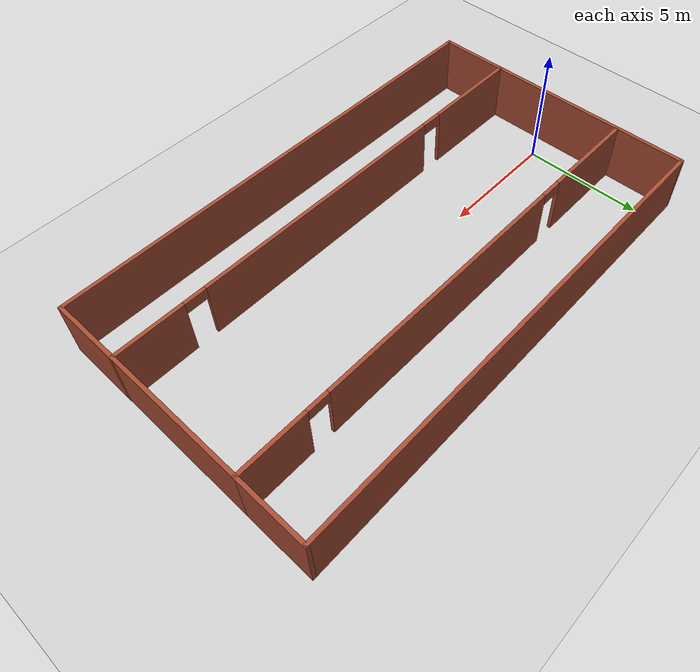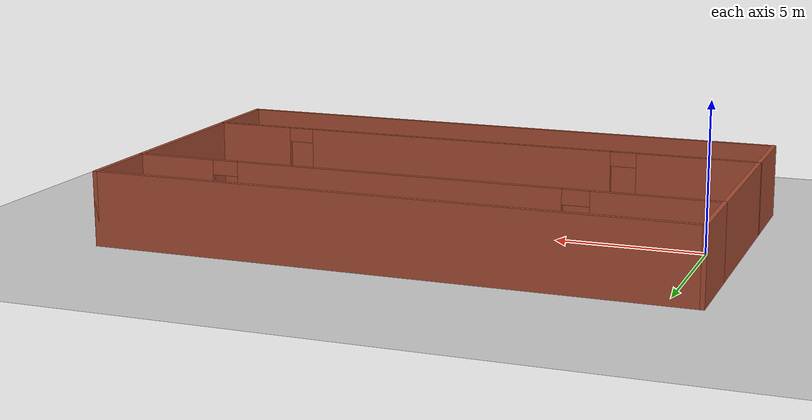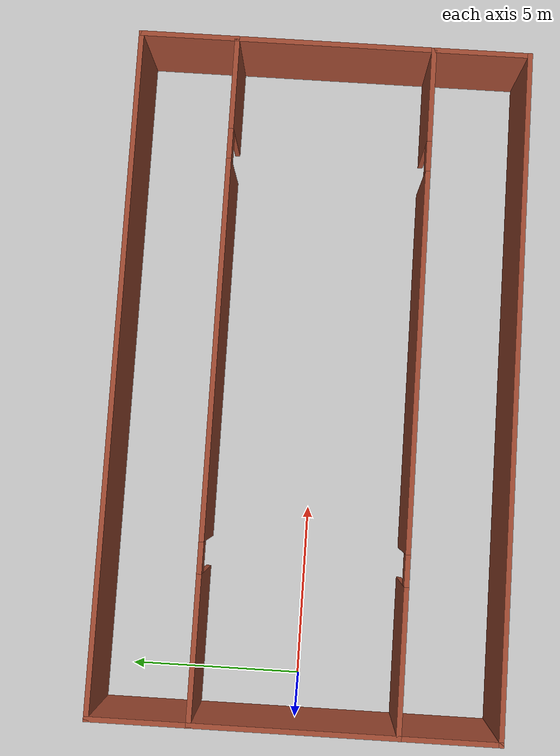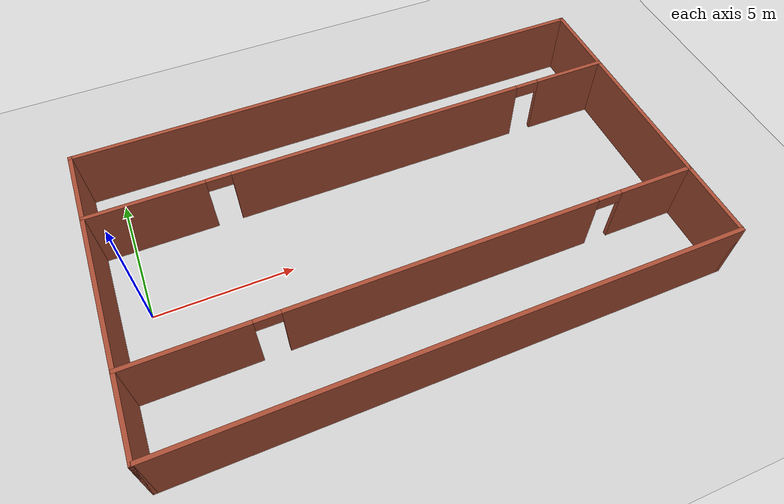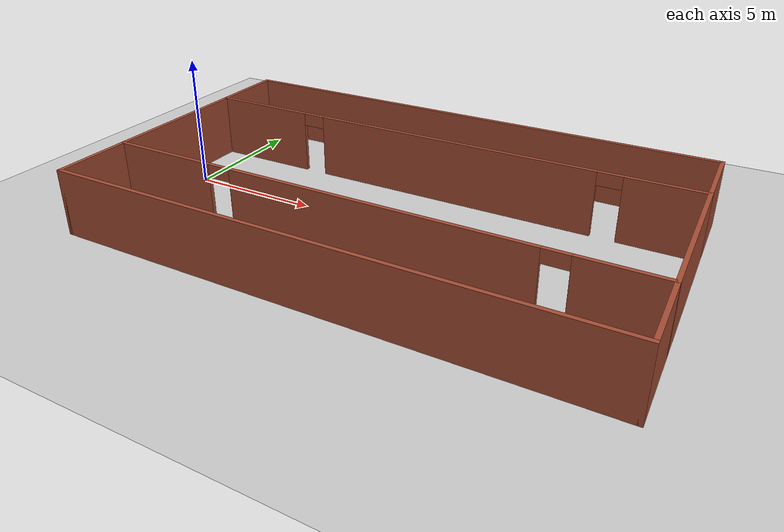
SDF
<sdf version="1.7">
 <world name="default">
  <light name="sun" type="directional">
   <pose>0 0 10 0 -0 0</pose>
   <diffuse>0.8 0.8 0.8 1</diffuse>
   <specular>0.2 0.2 0.2 1</specular>
   <attenuation>
    <range>1000</range>
    <constant>0.9</constant>
    <linear>0.01</linear>
    <quadratic>0.001</quadratic>
   </attenuation>
   <direction>-0.5 0.1 -0.9</direction>
   <spot><inner_angle>0</inner_angle><outer_angle>0</outer_angle><falloff>0</falloff></spot>
  </light>
  <model name="ground_plane">
   <static>1</static>
   <link name="link">
    <collision name="collision">
     <geometry><plane><normal>0 0 1</normal><size>100 100</size></plane></geometry>
     <surface><friction><ode><mu>100</mu><mu2>50</mu2></ode></friction></surface>
    </collision>
    <visual name="visual">
     <cast_shadows>0</cast_shadows>
     <geometry><plane><normal>0 0 1</normal><size>100 100</size></plane></geometry>
     <material>
      <script><uri>file://media/materials/scripts/gazebo.material</uri><name>Gazebo/Grey</name></script>
     </material>
    </visual>
   </link>
  </model>
  <gravity>0 0 -9.8</gravity>
  <magnetic_field>6e-06 2.3e-05 -4.2e-05</magnetic_field>
  <atmosphere type="adiabatic"/>
  <physics type="ode">
   <max_step_size>0.001</max_step_size>
   <real_time_factor>1</real_time_factor>
   <real_time_update_rate>1000</real_time_update_rate>
  </physics>
  <scene><ambient>0.4 0.4 0.4 1</ambient><background>0.7 0.7 0.7 1</background><shadows>1</shadows></scene>
  <spherical_coordinates>
   <surface_model>EARTH_WGS84</surface_model>
   <latitude_deg>0</latitude_deg>
   <longitude_deg>0</longitude_deg>
   <elevation>0</elevation>
   <heading_deg>0</heading_deg>
  </spherical_coordinates>
  <model name="Untitled">
   <pose>8.83658 0.01653 0 0 -0 0</pose>
   <link name="Wall_1">
    <collision name="Wall_1_Collision">
     <geometry><box><size>6 0.15 2.5</size></box></geometry>
     <pose>0 0 1.25 0 -0 0</pose>
    </collision>
    <visual name="Wall_1_Visual">
     <pose>0 0 1.25 0 -0 0</pose>
     <geometry><box><size>6 0.15 2.5</size></box></geometry>
     <material>
      <script><uri>file://media/materials/scripts/gazebo.material</uri><name>Gazebo/Bricks</name></script>
      <ambient>1 1 1 1</ambient>
     </material>
     <meta><layer>0</layer></meta>
    </visual>
    <pose>-9.925 0 0 0 -0 1.5708</pose>
   </link>
   <link name="Wall_10">
    <collision name="Wall_10_Collision">
     <geometry><box><size>3 0.15 2.5</size></box></geometry>
     <pose>0 0 1.25 0 -0 0</pose>
    </collision>
    <visual name="Wall_10_Visual">
     <pose>0 0 1.25 0 -0 0</pose>
     <geometry><box><size>3 0.15 2.5</size></box></geometry>
     <material>
      <script><uri>file://media/materials/scripts/gazebo.material</uri><name>Gazebo/Bricks</name></script>
      <ambient>1 1 1 1</ambient>
     </material>
     <meta><layer>0</layer></meta>
    </visual>
    <pose>-9.925 4.35 0 0 -0 1.5708</pose>
   </link>
   <link name="Wall_11">
    <collision name="Wall_11_Collision">
     <geometry><box><size>20 0.15 2.5</size></box></geometry>
     <pose>0 0 1.25 0 -0 0</pose>
    </collision>
    <visual name="Wall_11_Visual">
     <pose>0 0 1.25 0 -0 0</pose>
     <geometry><box><size>20 0.15 2.5</size></box></geometry>
     <material>
      <script><uri>file://media/materials/scripts/gazebo.material</uri><name>Gazebo/Bricks</name></script>
      <ambient>1 1 1 1</ambient>
     </material>
     <meta><layer>0</layer></meta>
    </visual>
    <pose>-0 5.775 0 0 -0 0</pose>
   </link>
   <link name="Wall_12">
    <collision name="Wall_12_Collision">
     <geometry><box><size>3 0.15 2.5</size></box></geometry>
     <pose>0 0 1.25 0 -0 0</pose>
    </collision>
    <visual name="Wall_12_Visual">
     <pose>0 0 1.25 0 -0 0</pose>
     <geometry><box><size>3 0.15 2.5</size></box></geometry>
     <material>
      <script><uri>file://media/materials/scripts/gazebo.material</uri><name>Gazebo/Bricks</name></script>
      <ambient>1 1 1 1</ambient>
     </material>
     <meta><layer>0</layer></meta>
    </visual>
    <pose>9.925 4.35 0 0 -0 -1.5708</pose>
   </link>
   <link name="Wall_3">
    <pose>-0 2.925 0 0 -0 0</pose>
    <visual name="Wall_3_Visual_0">
     <pose>-7.8889 0 1.25 0 -0 0</pose>
     <geometry><box><size>4.2222 0.15 2.5</size></box></geometry>
     <material>
      <script><uri>file://media/materials/scripts/gazebo.material</uri><name>Gazebo/Bricks</name></script>
      <ambient>1 1 1 1</ambient>
     </material>
     <meta><layer>0</layer></meta>
    </visual>
    <collision name="Wall_3_Collision_0">
     <geometry><box><size>4.2222 0.15 2.5</size></box></geometry>
     <pose>-7.8889 0 1.25 0 -0 0</pose>
    </collision>
    <visual name="Wall_3_Visual_1">
     <pose>0.698066 0 1.25 0 -0 0</pose>
     <geometry><box><size>11.1517 0.15 2.5</size></box></geometry>
     <material>
      <script><uri>file://media/materials/scripts/gazebo.material</uri><name>Gazebo/Bricks</name></script>
      <ambient>1 1 1 1</ambient>
     </material>
     <meta><layer>0</layer></meta>
    </visual>
    <collision name="Wall_3_Collision_1">
     <geometry><box><size>11.1517 0.15 2.5</size></box></geometry>
     <pose>0.698066 0 1.25 0 -0 0</pose>
    </collision>
    <visual name="Wall_3_Visual_2">
     <pose>8.58696 0 1.25 0 -0 0</pose>
     <geometry><box><size>2.82607 0.15 2.5</size></box></geometry>
     <material>
      <script><uri>file://media/materials/scripts/gazebo.material</uri><name>Gazebo/Bricks</name></script>
      <ambient>1 1 1 1</ambient>
     </material>
     <meta><layer>0</layer></meta>
    </visual>
    <collision name="Wall_3_Collision_2">
     <geometry><box><size>2.82607 0.15 2.5</size></box></geometry>
     <pose>8.58696 0 1.25 0 -0 0</pose>
    </collision>
    <visual name="Wall_3_Visual_3">
     <pose>-5.3278 0 2.25 0 -0 0</pose>
     <geometry><box><size>0.9 0.15 0.5</size></box></geometry>
     <material>
      <script><uri>file://media/materials/scripts/gazebo.material</uri><name>Gazebo/Bricks</name></script>
      <ambient>1 1 1 1</ambient>
     </material>
     <meta><layer>0</layer></meta>
    </visual>
    <collision name="Wall_3_Collision_3">
     <geometry><box><size>0.9 0.15 0.5</size></box></geometry>
     <pose>-5.3278 0 2.25 0 -0 0</pose>
    </collision>
    <visual name="Wall_3_Visual_4">
     <pose>6.72393 0 2.25 0 -0 0</pose>
     <geometry><box><size>0.9 0.15 0.5</size></box></geometry>
     <material>
      <script><uri>file://media/materials/scripts/gazebo.material</uri><name>Gazebo/Bricks</name></script>
      <ambient>1 1 1 1</ambient>
     </material>
     <meta><layer>0</layer></meta>
    </visual>
    <collision name="Wall_3_Collision_4">
     <geometry><box><size>0.9 0.15 0.5</size></box></geometry>
     <pose>6.72393 0 2.25 0 -0 0</pose>
    </collision>
   </link>
   <link name="Wall_4">
    <collision name="Wall_4_Collision">
     <geometry><box><size>6 0.15 2.5</size></box></geometry>
     <pose>0 0 1.25 0 -0 0</pose>
    </collision>
    <visual name="Wall_4_Visual">
     <pose>0 0 1.25 0 -0 0</pose>
     <geometry><box><size>6 0.15 2.5</size></box></geometry>
     <material>
      <script><uri>file://media/materials/scripts/gazebo.material</uri><name>Gazebo/Bricks</name></script>
      <ambient>1 1 1 1</ambient>
     </material>
     <meta><layer>0</layer></meta>
    </visual>
    <pose>9.925 0 0 0 -0 -1.5708</pose>
   </link>
   <link name="Wall_5">
    <pose>-0 -2.925 0 0 -0 3.14159</pose>
    <visual name="Wall_5_Visual_0">
     <pose>-8.57066 0 1.25 0 -0 0</pose>
     <geometry><box><size>2.85868 0.15 2.5</size></box></geometry>
     <material>
      <script><uri>file://media/materials/scripts/gazebo.material</uri><name>Gazebo/Bricks</name></script>
      <ambient>1 1 1 1</ambient>
     </material>
     <meta><layer>0</layer></meta>
    </visual>
    <collision name="Wall_5_Collision_0">
     <geometry><box><size>2.85868 0.15 2.5</size></box></geometry>
     <pose>-8.57066 0 1.25 0 -0 0</pose>
    </collision>
    <visual name="Wall_5_Visual_1">
     <pose>-0.679677 0 1.25 0 -0 0</pose>
     <geometry><box><size>11.1233 0.15 2.5</size></box></geometry>
     <material>
      <script><uri>file://media/materials/scripts/gazebo.material</uri><name>Gazebo/Bricks</name></script>
      <ambient>1 1 1 1</ambient>
     </material>
     <meta><layer>0</layer></meta>
    </visual>
    <collision name="Wall_5_Collision_1">
     <geometry><box><size>11.1233 0.15 2.5</size></box></geometry>
     <pose>-0.679677 0 1.25 0 -0 0</pose>
    </collision>
    <visual name="Wall_5_Visual_2">
     <pose>7.89098 0 1.25 0 -0 0</pose>
     <geometry><box><size>4.21803 0.15 2.5</size></box></geometry>
     <material>
      <script><uri>file://media/materials/scripts/gazebo.material</uri><name>Gazebo/Bricks</name></script>
      <ambient>1 1 1 1</ambient>
     </material>
     <meta><layer>0</layer></meta>
    </visual>
    <collision name="Wall_5_Collision_2">
     <geometry><box><size>4.21803 0.15 2.5</size></box></geometry>
     <pose>7.89098 0 1.25 0 -0 0</pose>
    </collision>
    <visual name="Wall_5_Visual_3">
     <pose>-6.69132 0 2.25 0 -0 0</pose>
     <geometry><box><size>0.9 0.15 0.5</size></box></geometry>
     <material>
      <script><uri>file://media/materials/scripts/gazebo.material</uri><name>Gazebo/Bricks</name></script>
      <ambient>1 1 1 1</ambient>
     </material>
     <meta><layer>0</layer></meta>
    </visual>
    <collision name="Wall_5_Collision_3">
     <geometry><box><size>0.9 0.15 0.5</size></box></geometry>
     <pose>-6.69132 0 2.25 0 -0 0</pose>
    </collision>
    <visual name="Wall_5_Visual_4">
     <pose>5.33197 0 2.25 0 -0 0</pose>
     <geometry><box><size>0.9 0.15 0.5</size></box></geometry>
     <material>
      <script><uri>file://media/materials/scripts/gazebo.material</uri><name>Gazebo/Bricks</name></script>
      <ambient>1 1 1 1</ambient>
     </material>
     <meta><layer>0</layer></meta>
    </visual>
    <collision name="Wall_5_Collision_4">
     <geometry><box><size>0.9 0.15 0.5</size></box></geometry>
     <pose>5.33197 0 2.25 0 -0 0</pose>
    </collision>
   </link>
   <link name="Wall_6">
    <collision name="Wall_6_Collision">
     <geometry><box><size>3 0.15 2.5</size></box></geometry>
     <pose>0 0 1.25 0 -0 0</pose>
    </collision>
    <visual name="Wall_6_Visual">
     <pose>0 0 1.25 0 -0 0</pose>
     <geometry><box><size>3 0.15 2.5</size></box></geometry>
     <material>
      <script><uri>file://media/materials/scripts/gazebo.material</uri><name>Gazebo/Bricks</name></script>
      <ambient>1 1 1 1</ambient>
     </material>
     <meta><layer>0</layer></meta>
    </visual>
    <pose>-9.925 -4.35 0 0 -0 -1.5708</pose>
   </link>
   <link name="Wall_7">
    <collision name="Wall_7_Collision">
     <geometry><box><size>20 0.15 2.5</size></box></geometry>
     <pose>0 0 1.25 0 -0 0</pose>
    </collision>
    <visual name="Wall_7_Visual">
     <pose>0 0 1.25 0 -0 0</pose>
     <geometry><box><size>20 0.15 2.5</size></box></geometry>
     <material>
      <script><uri>file://media/materials/scripts/gazebo.material</uri><name>Gazebo/Bricks</name></script>
      <ambient>1 1 1 1</ambient>
     </material>
     <meta><layer>0</layer></meta>
    </visual>
    <pose>-0 -5.775 0 0 -0 0</pose>
   </link>
   <link name="Wall_8">
    <collision name="Wall_8_Collision">
     <geometry><box><size>3 0.15 2.5</size></box></geometry>
     <pose>0 0 1.25 0 -0 0</pose>
    </collision>
    <visual name="Wall_8_Visual">
     <pose>0 0 1.25 0 -0 0</pose>
     <geometry><box><size>3 0.15 2.5</size></box></geometry>
     <material>
      <script><uri>file://media/materials/scripts/gazebo.material</uri><name>Gazebo/Bricks</name></script>
      <ambient>1 1 1 1</ambient>
     </material>
     <meta><layer>0</layer></meta>
    </visual>
    <pose>9.925 -4.35 0 0 -0 1.5708</pose>
   </link>
   <static>1</static>
  </model>
  <plugin name="ActorPosesPlugin" filename="libActorPosesPlugin.so"/>
 </world>
</sdf>
